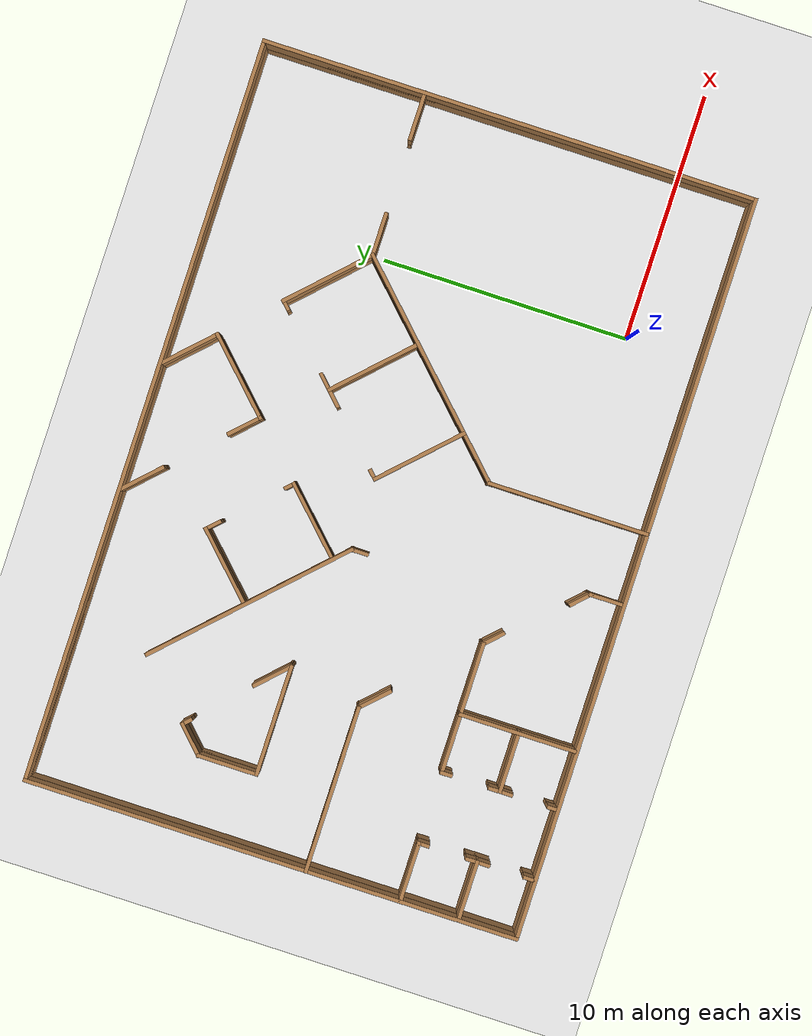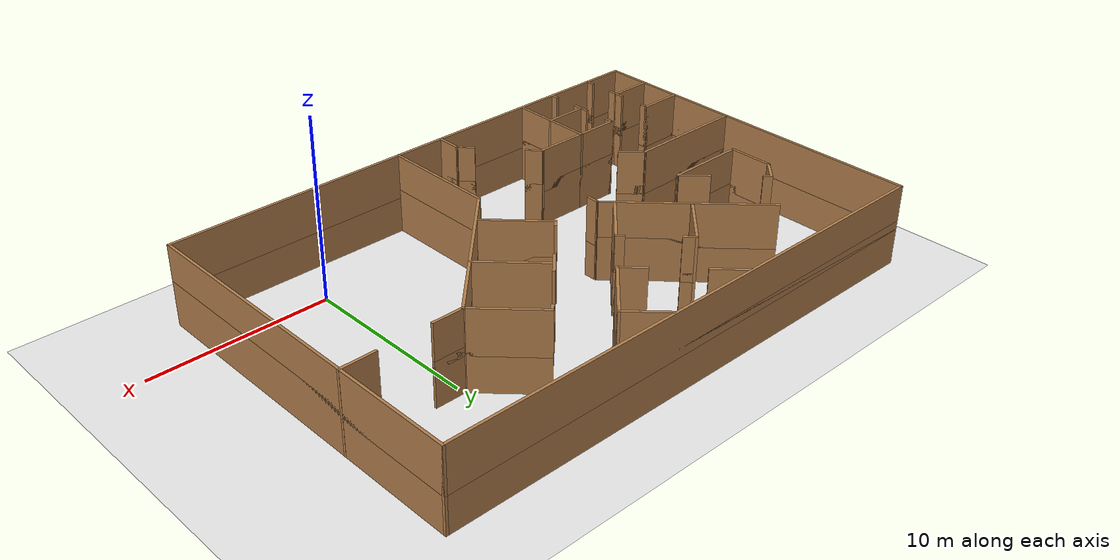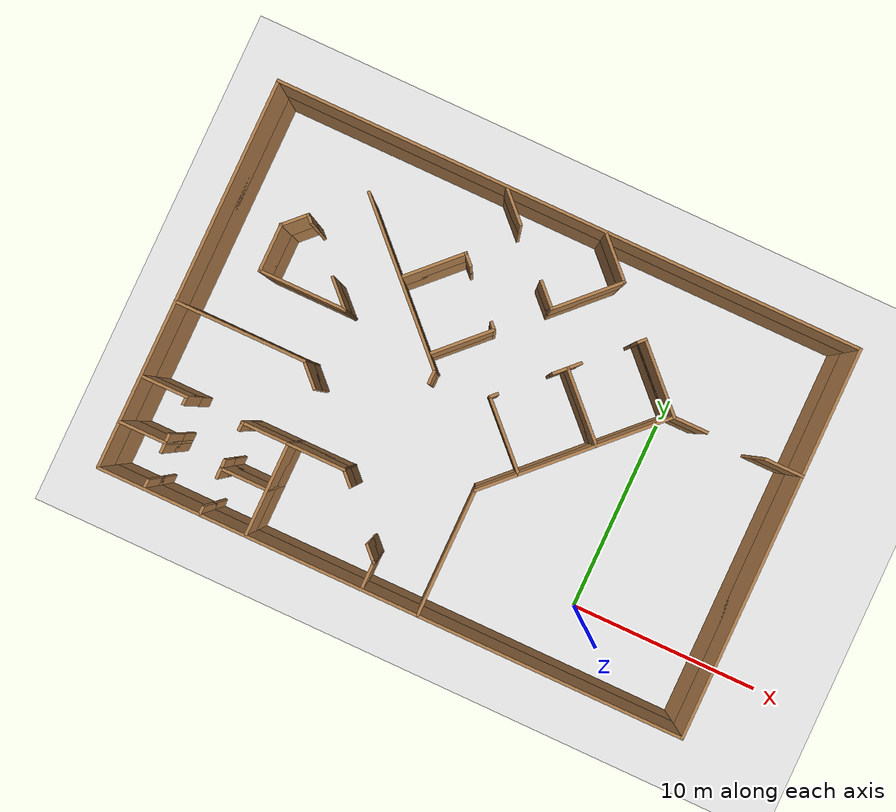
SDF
<sdf version="1.7">
 <world name="default">
  <model name="ground_plane">
   <static>1</static>
   <link name="link">
    <collision name="collision">
     <geometry><plane><normal>0 0 1</normal><size>100 100</size></plane></geometry>
     <surface>
      <contact><collide_bitmask>65535</collide_bitmask></contact>
      <friction><ode><mu>100</mu><mu2>50</mu2></ode></friction>
     </surface>
    </collision>
    <visual name="visual">
     <cast_shadows>0</cast_shadows>
     <geometry><plane><normal>0 0 1</normal><size>100 100</size></plane></geometry>
     <material>
      <script><uri>file://media/materials/scripts/gazebo.material</uri><name>Gazebo/White</name></script>
     </material>
    </visual>
   </link>
  </model>
  <model name="office_02_clone">
   <pose>-8.5 7 2 0 -0 0</pose>
   <link name="Wall_102">
    <collision name="Wall_102_Collision">
     <geometry><box><size>1.5 0.15 2.5</size></box></geometry>
     <pose>0 0 1.25 0 -0 0</pose>
    </collision>
    <visual name="Wall_102_Visual">
     <pose>0 0 1.25 0 -0 0</pose>
     <geometry><box><size>1.5 0.15 2.5</size></box></geometry>
     <material>
      <script><uri>file://media/materials/scripts/gazebo.material</uri><name>Gazebo/Wood</name></script>
      <ambient>1 1 1 1</ambient>
     </material>
    </visual>
    <pose>2.91922 3.4043 0 0 0 -2.35619</pose>
   </link>
   <link name="Wall_107">
    <collision name="Wall_107_Collision">
     <geometry><box><size>4 0.15 2.5</size></box></geometry>
     <pose>0 0 1.25 0 -0 0</pose>
    </collision>
    <visual name="Wall_107_Visual">
     <pose>0 0 1.25 0 -0 0</pose>
     <geometry><box><size>4 0.15 2.5</size></box></geometry>
     <material>
      <script><uri>file://media/materials/scripts/gazebo.material</uri><name>Gazebo/Wood</name></script>
      <ambient>1 1 1 1</ambient>
     </material>
    </visual>
    <pose>1.57572 -0.661562 0 0 0 -0.785398</pose>
   </link>
   <link name="Wall_109">
    <collision name="Wall_109_Collision">
     <geometry><box><size>3.75 0.15 2.5</size></box></geometry>
     <pose>0 0 1.25 0 -0 0</pose>
    </collision>
    <visual name="Wall_109_Visual">
     <pose>0 0 1.25 0 -0 0</pose>
     <geometry><box><size>3.75 0.15 2.5</size></box></geometry>
     <material>
      <script><uri>file://media/materials/scripts/gazebo.material</uri><name>Gazebo/Wood</name></script>
      <ambient>1 1 1 1</ambient>
     </material>
    </visual>
    <pose>2.37121 6.8868 0 0 0 -2.35619</pose>
   </link>
   <link name="Wall_110">
    <collision name="Wall_110_Collision">
     <geometry><box><size>1.5 0.15 2.5</size></box></geometry>
     <pose>0 0 1.25 0 -0 0</pose>
    </collision>
    <visual name="Wall_110_Visual">
     <pose>0 0 1.25 0 -0 0</pose>
     <geometry><box><size>1.5 0.15 2.5</size></box></geometry>
     <material>
      <script><uri>file://media/materials/scripts/gazebo.material</uri><name>Gazebo/Wood</name></script>
      <ambient>1 1 1 1</ambient>
     </material>
    </visual>
    <pose>0.621125 6.09131 0 0 -0 2.35619</pose>
   </link>
   <link name="Wall_112">
    <collision name="Wall_112_Collision">
     <geometry><box><size>2 0.15 2.5</size></box></geometry>
     <pose>0 0 1.25 0 -0 0</pose>
    </collision>
    <visual name="Wall_112_Visual">
     <pose>0 0 1.25 0 -0 0</pose>
     <geometry><box><size>2 0.15 2.5</size></box></geometry>
     <material>
      <script><uri>file://media/materials/scripts/gazebo.material</uri><name>Gazebo/Wood</name></script>
      <ambient>1 1 1 1</ambient>
     </material>
    </visual>
    <pose>-2.5255 9.23793 0 0 -0 2.35619</pose>
   </link>
   <link name="Wall_116">
    <collision name="Wall_116_Collision">
     <geometry><box><size>9 0.15 2.5</size></box></geometry>
     <pose>0 0 1.25 0 -0 0</pose>
    </collision>
    <visual name="Wall_116_Visual">
     <pose>0 0 1.25 0 -0 0</pose>
     <geometry><box><size>9 0.15 2.5</size></box></geometry>
     <material>
      <script><uri>file://media/materials/scripts/gazebo.material</uri><name>Gazebo/Wood</name></script>
      <ambient>1 1 1 1</ambient>
     </material>
    </visual>
    <pose>-5.76441 3.82857 0 0 -0 2.35619</pose>
   </link>
   <link name="Wall_121">
    <collision name="Wall_121_Collision">
     <geometry><box><size>0.75 0.15 2.5</size></box></geometry>
     <pose>0 0 1.25 0 -0 0</pose>
    </collision>
    <visual name="Wall_121_Visual">
     <pose>0 0 1.25 0 -0 0</pose>
     <geometry><box><size>0.75 0.15 2.5</size></box></geometry>
     <material>
      <script><uri>file://media/materials/scripts/gazebo.material</uri><name>Gazebo/Wood</name></script>
      <ambient>1 1 1 1</ambient>
     </material>
    </visual>
    <pose>-2.63546 0.399619 0 0 0 -1.5708</pose>
   </link>
   <link name="Wall_126">
    <collision name="Wall_126_Collision">
     <geometry><box><size>3.25 0.15 2.5</size></box></geometry>
     <pose>0 0 1.25 0 -0 0</pose>
    </collision>
    <visual name="Wall_126_Visual">
     <pose>0 0 1.25 0 -0 0</pose>
     <geometry><box><size>3.25 0.15 2.5</size></box></geometry>
     <material>
      <script><uri>file://media/materials/scripts/gazebo.material</uri><name>Gazebo/Wood</name></script>
      <ambient>1 1 1 1</ambient>
     </material>
    </visual>
    <pose>-2.01285 2.50274 0 0 0 -2.35619</pose>
   </link>
   <link name="Wall_131">
    <collision name="Wall_131_Collision">
     <geometry><box><size>0.5 0.15 2.5</size></box></geometry>
     <pose>0 0 1.25 0 -0 0</pose>
    </collision>
    <visual name="Wall_131_Visual">
     <pose>0 0 1.25 0 -0 0</pose>
     <geometry><box><size>0.5 0.15 2.5</size></box></geometry>
     <material>
      <script><uri>file://media/materials/scripts/gazebo.material</uri><name>Gazebo/Wood</name></script>
      <ambient>1 1 1 1</ambient>
     </material>
    </visual>
    <pose>-1.04058 3.7225 0 0 -0 2.35619</pose>
   </link>
   <link name="Wall_134">
    <collision name="Wall_134_Collision">
     <geometry><box><size>0.75 0.15 2.5</size></box></geometry>
     <pose>0 0 1.25 0 -0 0</pose>
    </collision>
    <visual name="Wall_134_Visual">
     <pose>0 0 1.25 0 -0 0</pose>
     <geometry><box><size>0.75 0.15 2.5</size></box></geometry>
     <material>
      <script><uri>file://media/materials/scripts/gazebo.material</uri><name>Gazebo/Wood</name></script>
      <ambient>1 1 1 1</ambient>
     </material>
    </visual>
    <pose>-3.39171 6.07363 0 0 -0 2.35619</pose>
   </link>
   <link name="Wall_135">
    <collision name="Wall_135_Collision">
     <geometry><box><size>3.25 0.15 2.5</size></box></geometry>
     <pose>0 0 1.25 0 -0 0</pose>
    </collision>
    <visual name="Wall_135_Visual">
     <pose>0 0 1.25 0 -0 0</pose>
     <geometry><box><size>3.25 0.15 2.5</size></box></geometry>
     <material>
      <script><uri>file://media/materials/scripts/gazebo.material</uri><name>Gazebo/Wood</name></script>
      <ambient>1 1 1 1</ambient>
     </material>
    </visual>
    <pose>-4.69985 5.18975 0 0 0 -2.35619</pose>
   </link>
   <link name="Wall_160">
    <collision name="Wall_160_Collision">
     <geometry><box><size>2.5 0.15 2.5</size></box></geometry>
     <pose>0 0 1.25 0 -0 0</pose>
    </collision>
    <visual name="Wall_160_Visual">
     <pose>0 0 1.25 0 -0 0</pose>
     <geometry><box><size>2.5 0.15 2.5</size></box></geometry>
     <material>
      <script><uri>file://media/materials/scripts/gazebo.material</uri><name>Gazebo/Wood</name></script>
      <ambient>1 1 1 1</ambient>
     </material>
    </visual>
    <pose>-13.7509 -7.575 0 0 -0 0</pose>
   </link>
   <link name="Wall_164">
    <collision name="Wall_164_Collision">
     <geometry><box><size>2.5 0.15 2.5</size></box></geometry>
     <pose>0 0 1.25 0 -0 0</pose>
    </collision>
    <visual name="Wall_164_Visual">
     <pose>0 0 1.25 0 -0 0</pose>
     <geometry><box><size>2.5 0.15 2.5</size></box></geometry>
     <material>
      <script><uri>file://media/materials/scripts/gazebo.material</uri><name>Gazebo/Wood</name></script>
      <ambient>1 1 1 1</ambient>
     </material>
    </visual>
    <pose>-13.7509 -5.225 0 0 -0 0</pose>
   </link>
   <link name="Wall_171">
    <collision name="Wall_171_Collision">
     <geometry><box><size>2.5 0.15 2.5</size></box></geometry>
     <pose>0 0 1.25 0 -0 0</pose>
    </collision>
    <visual name="Wall_171_Visual">
     <pose>0 0 1.25 0 -0 0</pose>
     <geometry><box><size>2.5 0.15 2.5</size></box></geometry>
     <material>
      <script><uri>file://media/materials/scripts/gazebo.material</uri><name>Gazebo/Wood</name></script>
      <ambient>1 1 1 1</ambient>
     </material>
    </visual>
    <pose>-8.55093 -7.575 0 0 -0 0</pose>
   </link>
   <link name="Wall_173">
    <collision name="Wall_173_Collision">
     <geometry><box><size>0.5 0.15 2.5</size></box></geometry>
     <pose>0 0 1.25 0 -0 0</pose>
    </collision>
    <visual name="Wall_173_Visual">
     <pose>0 0 1.25 0 -0 0</pose>
     <geometry><box><size>0.5 0.15 2.5</size></box></geometry>
     <material>
      <script><uri>file://media/materials/scripts/gazebo.material</uri><name>Gazebo/Wood</name></script>
      <ambient>1 1 1 1</ambient>
     </material>
    </visual>
    <pose>-12.5759 -5.4 0 0 0 -1.5708</pose>
   </link>
   <link name="Wall_175">
    <collision name="Wall_175_Collision">
     <geometry><box><size>0.5 0.15 2.5</size></box></geometry>
     <pose>0 0 1.25 0 -0 0</pose>
    </collision>
    <visual name="Wall_175_Visual">
     <pose>0 0 1.25 0 -0 0</pose>
     <geometry><box><size>0.5 0.15 2.5</size></box></geometry>
     <material>
      <script><uri>file://media/materials/scripts/gazebo.material</uri><name>Gazebo/Wood</name></script>
      <ambient>1 1 1 1</ambient>
     </material>
    </visual>
    <pose>-9.72593 -5.4 0 0 0 -1.5708</pose>
   </link>
   <link name="Wall_178">
    <collision name="Wall_178_Collision">
     <geometry><box><size>1 0.15 2.5</size></box></geometry>
     <pose>0 0 1.25 0 -0 0</pose>
    </collision>
    <visual name="Wall_178_Visual">
     <pose>0 0 1.25 0 -0 0</pose>
     <geometry><box><size>1 0.15 2.5</size></box></geometry>
     <material>
      <script><uri>file://media/materials/scripts/gazebo.material</uri><name>Gazebo/Wood</name></script>
      <ambient>1 1 1 1</ambient>
     </material>
    </visual>
    <pose>-12.5759 -7.6 0 0 0 -1.5708</pose>
   </link>
   <link name="Wall_183">
    <collision name="Wall_183_Collision">
     <geometry><box><size>0.5 0.15 2.5</size></box></geometry>
     <pose>0 0 1.25 0 -0 0</pose>
    </collision>
    <visual name="Wall_183_Visual">
     <pose>0 0 1.25 0 -0 0</pose>
     <geometry><box><size>0.5 0.15 2.5</size></box></geometry>
     <material>
      <script><uri>file://media/materials/scripts/gazebo.material</uri><name>Gazebo/Wood</name></script>
      <ambient>1 1 1 1</ambient>
     </material>
    </visual>
    <pose>-12.5759 -9.685 0 0 0 -1.5708</pose>
   </link>
   <link name="Wall_186">
    <collision name="Wall_186_Collision">
     <geometry><box><size>1 0.15 2.5</size></box></geometry>
     <pose>0 0 1.25 0 -0 0</pose>
    </collision>
    <visual name="Wall_186_Visual">
     <pose>0 0 1.25 0 -0 0</pose>
     <geometry><box><size>1 0.15 2.5</size></box></geometry>
     <material>
      <script><uri>file://media/materials/scripts/gazebo.material</uri><name>Gazebo/Wood</name></script>
      <ambient>1 1 1 1</ambient>
     </material>
    </visual>
    <pose>-9.72593 -7.6 0 0 0 -1.5708</pose>
   </link>
   <link name="Wall_188">
    <collision name="Wall_188_Collision">
     <geometry><box><size>0.5 0.15 2.5</size></box></geometry>
     <pose>0 0 1.25 0 -0 0</pose>
    </collision>
    <visual name="Wall_188_Visual">
     <pose>0 0 1.25 0 -0 0</pose>
     <geometry><box><size>0.5 0.15 2.5</size></box></geometry>
     <material>
      <script><uri>file://media/materials/scripts/gazebo.material</uri><name>Gazebo/Wood</name></script>
      <ambient>1 1 1 1</ambient>
     </material>
    </visual>
    <pose>-9.72593 -9.731 0 0 0 -1.5708</pose>
   </link>
   <link name="Wall_194">
    <collision name="Wall_194_Collision">
     <geometry><box><size>1.5 0.15 2.5</size></box></geometry>
     <pose>0 0 1.25 0 -0 0</pose>
    </collision>
    <visual name="Wall_194_Visual">
     <pose>0 0 1.25 0 -0 0</pose>
     <geometry><box><size>1.5 0.15 2.5</size></box></geometry>
     <material>
      <script><uri>file://media/materials/scripts/gazebo.material</uri><name>Gazebo/Wood</name></script>
      <ambient>1 1 1 1</ambient>
     </material>
    </visual>
    <pose>-7.85323 -1.8977 0 0 -0 2.35619</pose>
   </link>
   <link name="Wall_195">
    <collision name="Wall_195_Collision">
     <geometry><box><size>6.75 0.15 2.5</size></box></geometry>
     <pose>0 0 1.25 0 -0 0</pose>
    </collision>
    <visual name="Wall_195_Visual">
     <pose>0 0 1.25 0 -0 0</pose>
     <geometry><box><size>6.75 0.15 2.5</size></box></geometry>
     <material>
      <script><uri>file://media/materials/scripts/gazebo.material</uri><name>Gazebo/Wood</name></script>
      <ambient>1 1 1 1</ambient>
     </material>
    </visual>
    <pose>-11.6305 -1.42041 0 0 -0 3.14159</pose>
   </link>
   <link name="Wall_200">
    <collision name="Wall_200_Collision">
     <geometry><box><size>1.5 0.15 2.5</size></box></geometry>
     <pose>0 0 1.25 0 -0 0</pose>
    </collision>
    <visual name="Wall_200_Visual">
     <pose>0 0 1.25 0 -0 0</pose>
     <geometry><box><size>1.5 0.15 2.5</size></box></geometry>
     <material>
      <script><uri>file://media/materials/scripts/gazebo.material</uri><name>Gazebo/Wood</name></script>
      <ambient>1 1 1 1</ambient>
     </material>
    </visual>
    <pose>-1.45644 -9.23222 0 0 -0 1.5708</pose>
   </link>
   <link name="Wall_229">
    <collision name="Wall_229_Collision">
     <geometry><box><size>4.5 0.15 2.5</size></box></geometry>
     <pose>0 0 1.25 0 -0 0</pose>
    </collision>
    <visual name="Wall_229_Visual">
     <pose>0 0 1.25 0 -0 0</pose>
     <geometry><box><size>4.5 0.15 2.5</size></box></geometry>
     <material>
      <script><uri>file://media/materials/scripts/gazebo.material</uri><name>Gazebo/Wood</name></script>
      <ambient>1 1 1 1</ambient>
     </material>
    </visual>
    <pose>-9.79935 1.52745 0 0 -0 0</pose>
   </link>
   <link name="Wall_230">
    <collision name="Wall_230_Collision">
     <geometry><box><size>1.75 0.15 2.5</size></box></geometry>
     <pose>0 0 1.25 0 -0 0</pose>
    </collision>
    <visual name="Wall_230_Visual">
     <pose>0 0 1.25 0 -0 0</pose>
     <geometry><box><size>1.75 0.15 2.5</size></box></geometry>
     <material>
      <script><uri>file://media/materials/scripts/gazebo.material</uri><name>Gazebo/Wood</name></script>
      <ambient>1 1 1 1</ambient>
     </material>
    </visual>
    <pose>-8.19003 2.09313 0 0 -0 2.35619</pose>
   </link>
   <link name="Wall_244">
    <collision name="Wall_244_Collision">
     <geometry><box><size>2.5 0.15 2.5</size></box></geometry>
     <pose>0 0 1.25 0 -0 0</pose>
    </collision>
    <visual name="Wall_244_Visual">
     <pose>0 0 1.25 0 -0 0</pose>
     <geometry><box><size>2.5 0.15 2.5</size></box></geometry>
     <material>
      <script><uri>file://media/materials/scripts/gazebo.material</uri><name>Gazebo/Wood</name></script>
      <ambient>1 1 1 1</ambient>
     </material>
    </visual>
    <pose>-11.9743 2.70245 0 0 -0 1.5708</pose>
   </link>
   <link name="Wall_246">
    <collision name="Wall_246_Collision">
     <geometry><box><size>1.5 0.15 2.5</size></box></geometry>
     <pose>0 0 1.25 0 -0 0</pose>
    </collision>
    <visual name="Wall_246_Visual">
     <pose>0 0 1.25 0 -0 0</pose>
     <geometry><box><size>1.5 0.15 2.5</size></box></geometry>
     <material>
      <script><uri>file://media/materials/scripts/gazebo.material</uri><name>Gazebo/Wood</name></script>
      <ambient>1 1 1 1</ambient>
     </material>
    </visual>
    <pose>-11.4971 4.35474 0 0 -0 0.785398</pose>
   </link>
   <link name="Wall_247">
    <collision name="Wall_247_Collision">
     <geometry><box><size>0.5 0.15 2.5</size></box></geometry>
     <pose>0 0 1.25 0 -0 0</pose>
    </collision>
    <visual name="Wall_247_Visual">
     <pose>0 0 1.25 0 -0 0</pose>
     <geometry><box><size>0.5 0.15 2.5</size></box></geometry>
     <material>
      <script><uri>file://media/materials/scripts/gazebo.material</uri><name>Gazebo/Wood</name></script>
      <ambient>1 1 1 1</ambient>
     </material>
    </visual>
    <pose>-10.896 4.7083 0 0 0 -0.785398</pose>
   </link>
   <link name="Wall_253">
    <collision name="Wall_253_Collision">
     <geometry><box><size>2.5 0.15 2.5</size></box></geometry>
     <pose>0 0 1.25 0 -0 0</pose>
    </collision>
    <visual name="Wall_253_Visual">
     <pose>0 0 1.25 0 -0 0</pose>
     <geometry><box><size>2.5 0.15 2.5</size></box></geometry>
     <material>
      <script><uri>file://media/materials/scripts/gazebo.material</uri><name>Gazebo/Wood</name></script>
      <ambient>1 1 1 1</ambient>
     </material>
    </visual>
    <pose>-8.55093 -5.225 0 0 -0 0</pose>
   </link>
   <link name="Wall_254">
    <collision name="Wall_254_Collision">
     <geometry><box><size>4.75 0.15 2.5</size></box></geometry>
     <pose>0 0 1.25 0 -0 0</pose>
    </collision>
    <visual name="Wall_254_Visual">
     <pose>0 0 1.25 0 -0 0</pose>
     <geometry><box><size>4.75 0.15 2.5</size></box></geometry>
     <material>
      <script><uri>file://media/materials/scripts/gazebo.material</uri><name>Gazebo/Wood</name></script>
      <ambient>1 1 1 1</ambient>
     </material>
    </visual>
    <pose>-7.37593 -7.525 0 0 0 -1.5708</pose>
   </link>
   <link name="Wall_258">
    <collision name="Wall_258_Collision">
     <geometry><box><size>3 0.15 2.5</size></box></geometry>
     <pose>0 0 1.25 0 -0 0</pose>
    </collision>
    <visual name="Wall_258_Visual">
     <pose>0 0 1.25 0 -0 0</pose>
     <geometry><box><size>3 0.15 2.5</size></box></geometry>
     <material>
      <script><uri>file://media/materials/scripts/gazebo.material</uri><name>Gazebo/Wood</name></script>
      <ambient>1 1 1 1</ambient>
     </material>
    </visual>
    <pose>-5.95093 -5.225 0 0 -0 0</pose>
   </link>
   <link name="Wall_259">
    <collision name="Wall_259_Collision">
     <geometry><box><size>1 0.15 2.5</size></box></geometry>
     <pose>0 0 1.25 0 -0 0</pose>
    </collision>
    <visual name="Wall_259_Visual">
     <pose>0 0 1.25 0 -0 0</pose>
     <geometry><box><size>1 0.15 2.5</size></box></geometry>
     <material>
      <script><uri>file://media/materials/scripts/gazebo.material</uri><name>Gazebo/Wood</name></script>
      <ambient>1 1 1 1</ambient>
     </material>
    </visual>
    <pose>-4.22541 -5.52552 0 0 0 -0.785398</pose>
   </link>
   <link name="Wall_261">
    <collision name="Wall_261_Collision">
     <geometry><box><size>1 0.15 2.5</size></box></geometry>
     <pose>0 0 1.25 0 -0 0</pose>
    </collision>
    <visual name="Wall_261_Visual">
     <pose>0 0 1.25 0 -0 0</pose>
     <geometry><box><size>1 0.15 2.5</size></box></geometry>
     <material>
      <script><uri>file://media/materials/scripts/gazebo.material</uri><name>Gazebo/Wood</name></script>
      <ambient>1 1 1 1</ambient>
     </material>
    </visual>
    <pose>-1.75697 -8.2567 0 0 -0 2.35619</pose>
   </link>
   <link name="Wall_5">
    <collision name="Wall_5_Collision">
     <geometry><box><size>20 0.15 2.5</size></box></geometry>
     <pose>0 0 1.25 0 -0 0</pose>
    </collision>
    <visual name="Wall_5_Visual">
     <pose>0 0 1.25 0 -0 0</pose>
     <geometry><box><size>20 0.15 2.5</size></box></geometry>
     <material>
      <script><uri>file://media/materials/scripts/gazebo.material</uri><name>Gazebo/Wood</name></script>
      <ambient>1 1 1 1</ambient>
     </material>
    </visual>
    <pose>-14.9259 0 0 0 0 -1.5708</pose>
   </link>
   <link name="Wall_51">
    <collision name="Wall_51_Collision">
     <geometry><box><size>6.5 0.15 2.5</size></box></geometry>
     <pose>0 0 1.25 0 -0 0</pose>
    </collision>
    <visual name="Wall_51_Visual">
     <pose>0 0 1.25 0 -0 0</pose>
     <geometry><box><size>6.5 0.15 2.5</size></box></geometry>
     <material>
      <script><uri>file://media/materials/scripts/gazebo.material</uri><name>Gazebo/Wood</name></script>
      <ambient>1 1 1 1</ambient>
     </material>
    </visual>
    <pose>1.41662 -6.71802 0 0 -0 1.5708</pose>
   </link>
   <link name="Wall_55">
    <collision name="Wall_55_Collision">
     <geometry><box><size>10 0.15 2.5</size></box></geometry>
     <pose>0 0 1.25 0 -0 0</pose>
    </collision>
    <visual name="Wall_55_Visual">
     <pose>0 0 1.25 0 -0 0</pose>
     <geometry><box><size>10 0.15 2.5</size></box></geometry>
     <material>
      <script><uri>file://media/materials/scripts/gazebo.material</uri><name>Gazebo/Wood</name></script>
      <ambient>1 1 1 1</ambient>
     </material>
    </visual>
    <pose>4.89912 -0.060521 0 0 0 -2.35619</pose>
   </link>
   <link name="Wall_57">
    <collision name="Wall_57_Collision">
     <geometry><box><size>1.8029 0.15 2.5</size></box></geometry>
     <pose>0 0 1.25 0 -0 0</pose>
    </collision>
    <visual name="Wall_57_Visual">
     <pose>0 0 1.25 0 -0 0</pose>
     <geometry><box><size>1.8029 0.15 2.5</size></box></geometry>
     <material>
      <script><uri>file://media/materials/scripts/gazebo.material</uri><name>Gazebo/Wood</name></script>
      <ambient>1 1 1 1</ambient>
     </material>
    </visual>
    <pose>9.20807 3.42198 0 0 -0 0</pose>
   </link>
   <link name="Wall_59">
    <collision name="Wall_59_Collision">
     <geometry><box><size>2 0.15 2.5</size></box></geometry>
     <pose>0 0 1.25 0 -0 0</pose>
    </collision>
    <visual name="Wall_59_Visual">
     <pose>0 0 1.25 0 -0 0</pose>
     <geometry><box><size>2 0.15 2.5</size></box></geometry>
     <material>
      <script><uri>file://media/materials/scripts/gazebo.material</uri><name>Gazebo/Wood</name></script>
      <ambient>1 1 1 1</ambient>
     </material>
    </visual>
    <pose>14.0055 3.43241 0 0 -0 3.14159</pose>
   </link>
   <link name="Wall_6">
    <collision name="Wall_6_Collision">
     <geometry><box><size>30 0.15 2.5</size></box></geometry>
     <pose>0 0 1.25 0 -0 0</pose>
    </collision>
    <visual name="Wall_6_Visual">
     <pose>0 0 1.25 0 -0 0</pose>
     <geometry><box><size>30 0.15 2.5</size></box></geometry>
     <material>
      <script><uri>file://media/materials/scripts/gazebo.material</uri><name>Gazebo/Wood</name></script>
      <ambient>1 1 1 1</ambient>
     </material>
    </visual>
    <pose>-0.000934 -9.925 0 0 -0 0</pose>
   </link>
   <link name="Wall_7">
    <collision name="Wall_7_Collision">
     <geometry><box><size>20 0.15 2.5</size></box></geometry>
     <pose>0 0 1.25 0 -0 0</pose>
    </collision>
    <visual name="Wall_7_Visual">
     <pose>0 0 1.25 0 -0 0</pose>
     <geometry><box><size>20 0.15 2.5</size></box></geometry>
     <material>
      <script><uri>file://media/materials/scripts/gazebo.material</uri><name>Gazebo/Wood</name></script>
      <ambient>1 1 1 1</ambient>
     </material>
    </visual>
    <pose>14.9241 0 0 0 -0 1.5708</pose>
   </link>
   <link name="Wall_8">
    <collision name="Wall_8_Collision">
     <geometry><box><size>30 0.15 2.5</size></box></geometry>
     <pose>0 0 1.25 0 -0 0</pose>
    </collision>
    <visual name="Wall_8_Visual">
     <pose>0 0 1.25 0 -0 0</pose>
     <geometry><box><size>30 0.15 2.5</size></box></geometry>
     <material>
      <script><uri>file://media/materials/scripts/gazebo.material</uri><name>Gazebo/Wood</name></script>
      <ambient>1 1 1 1</ambient>
     </material>
    </visual>
    <pose>-0.000934 9.925 0 0 -0 3.14159</pose>
   </link>
   <link name="Wall_80">
    <collision name="Wall_80_Collision">
     <geometry><box><size>4 0.15 2.5</size></box></geometry>
     <pose>0 0 1.25 0 -0 0</pose>
    </collision>
    <visual name="Wall_80_Visual">
     <pose>0 0 1.25 0 -0 0</pose>
     <geometry><box><size>4 0.15 2.5</size></box></geometry>
     <material>
      <script><uri>file://media/materials/scripts/gazebo.material</uri><name>Gazebo/Wood</name></script>
      <ambient>1 1 1 1</ambient>
     </material>
    </visual>
    <pose>7.02044 4.78316 0 0 -0 2.35619</pose>
   </link>
   <link name="Wall_82">
    <collision name="Wall_82_Collision">
     <geometry><box><size>2.5 0.15 2.5</size></box></geometry>
     <pose>0 0 1.25 0 -0 0</pose>
    </collision>
    <visual name="Wall_82_Visual">
     <pose>0 0 1.25 0 -0 0</pose>
     <geometry><box><size>2.5 0.15 2.5</size></box></geometry>
     <material>
      <script><uri>file://media/materials/scripts/gazebo.material</uri><name>Gazebo/Wood</name></script>
      <ambient>1 1 1 1</ambient>
     </material>
    </visual>
    <pose>2.81316 8.99044 0 0 -0 2.35619</pose>
   </link>
   <link name="Wall_87">
    <collision name="Wall_87_Collision">
     <geometry><box><size>4 0.15 2.5</size></box></geometry>
     <pose>0 0 1.25 0 -0 0</pose>
    </collision>
    <visual name="Wall_87_Visual">
     <pose>0 0 1.25 0 -0 0</pose>
     <geometry><box><size>4 0.15 2.5</size></box></geometry>
     <material>
      <script><uri>file://media/materials/scripts/gazebo.material</uri><name>Gazebo/Wood</name></script>
      <ambient>1 1 1 1</ambient>
     </material>
    </visual>
    <pose>4.29808 2.0608 0 0 -0 2.35619</pose>
   </link>
   <link name="Wall_90">
    <collision name="Wall_90_Collision">
     <geometry><box><size>0.5 0.15 2.5</size></box></geometry>
     <pose>0 0 1.25 0 -0 0</pose>
    </collision>
    <visual name="Wall_90_Visual">
     <pose>0 0 1.25 0 -0 0</pose>
     <geometry><box><size>0.5 0.15 2.5</size></box></geometry>
     <material>
      <script><uri>file://media/materials/scripts/gazebo.material</uri><name>Gazebo/Wood</name></script>
      <ambient>1 1 1 1</ambient>
     </material>
    </visual>
    <pose>5.53552 6.0206 0 0 0 -2.35619</pose>
   </link>
   <link name="Wall_94">
    <collision name="Wall_94_Collision">
     <geometry><box><size>0.5 0.15 2.5</size></box></geometry>
     <pose>0 0 1.25 0 -0 0</pose>
    </collision>
    <visual name="Wall_94_Visual">
     <pose>0 0 1.25 0 -0 0</pose>
     <geometry><box><size>0.5 0.15 2.5</size></box></geometry>
     <material>
      <script><uri>file://media/materials/scripts/gazebo.material</uri><name>Gazebo/Wood</name></script>
      <ambient>1 1 1 1</ambient>
     </material>
    </visual>
    <pose>0.338283 0.823362 0 0 -0 0.785398</pose>
   </link>
   <static>1</static>
  </model>
  <model name="office_02_clone_clone">
   <pose>-8.5 7 0 0 -0 0</pose>
   <link name="Wall_102">
    <collision name="Wall_102_Collision">
     <geometry><box><size>1.5 0.15 2.5</size></box></geometry>
     <pose>0 0 1.25 0 -0 0</pose>
    </collision>
    <visual name="Wall_102_Visual">
     <pose>0 0 1.25 0 -0 0</pose>
     <geometry><box><size>1.5 0.15 2.5</size></box></geometry>
     <material>
      <script><uri>file://media/materials/scripts/gazebo.material</uri><name>Gazebo/Wood</name></script>
      <ambient>1 1 1 1</ambient>
     </material>
    </visual>
    <pose>2.91922 3.4043 0 0 0 -2.35619</pose>
   </link>
   <link name="Wall_107">
    <collision name="Wall_107_Collision">
     <geometry><box><size>4 0.15 2.5</size></box></geometry>
     <pose>0 0 1.25 0 -0 0</pose>
    </collision>
    <visual name="Wall_107_Visual">
     <pose>0 0 1.25 0 -0 0</pose>
     <geometry><box><size>4 0.15 2.5</size></box></geometry>
     <material>
      <script><uri>file://media/materials/scripts/gazebo.material</uri><name>Gazebo/Wood</name></script>
      <ambient>1 1 1 1</ambient>
     </material>
    </visual>
    <pose>1.57572 -0.661562 0 0 0 -0.785398</pose>
   </link>
   <link name="Wall_109">
    <collision name="Wall_109_Collision">
     <geometry><box><size>3.75 0.15 2.5</size></box></geometry>
     <pose>0 0 1.25 0 -0 0</pose>
    </collision>
    <visual name="Wall_109_Visual">
     <pose>0 0 1.25 0 -0 0</pose>
     <geometry><box><size>3.75 0.15 2.5</size></box></geometry>
     <material>
      <script><uri>file://media/materials/scripts/gazebo.material</uri><name>Gazebo/Wood</name></script>
      <ambient>1 1 1 1</ambient>
     </material>
    </visual>
    <pose>2.37121 6.8868 0 0 0 -2.35619</pose>
   </link>
   <link name="Wall_110">
    <collision name="Wall_110_Collision">
     <geometry><box><size>1.5 0.15 2.5</size></box></geometry>
     <pose>0 0 1.25 0 -0 0</pose>
    </collision>
    <visual name="Wall_110_Visual">
     <pose>0 0 1.25 0 -0 0</pose>
     <geometry><box><size>1.5 0.15 2.5</size></box></geometry>
     <material>
      <script><uri>file://media/materials/scripts/gazebo.material</uri><name>Gazebo/Wood</name></script>
      <ambient>1 1 1 1</ambient>
     </material>
    </visual>
    <pose>0.621125 6.09131 0 0 -0 2.35619</pose>
   </link>
   <link name="Wall_112">
    <collision name="Wall_112_Collision">
     <geometry><box><size>2 0.15 2.5</size></box></geometry>
     <pose>0 0 1.25 0 -0 0</pose>
    </collision>
    <visual name="Wall_112_Visual">
     <pose>0 0 1.25 0 -0 0</pose>
     <geometry><box><size>2 0.15 2.5</size></box></geometry>
     <material>
      <script><uri>file://media/materials/scripts/gazebo.material</uri><name>Gazebo/Wood</name></script>
      <ambient>1 1 1 1</ambient>
     </material>
    </visual>
    <pose>-2.5255 9.23793 0 0 -0 2.35619</pose>
   </link>
   <link name="Wall_116">
    <collision name="Wall_116_Collision">
     <geometry><box><size>9 0.15 2.5</size></box></geometry>
     <pose>0 0 1.25 0 -0 0</pose>
    </collision>
    <visual name="Wall_116_Visual">
     <pose>0 0 1.25 0 -0 0</pose>
     <geometry><box><size>9 0.15 2.5</size></box></geometry>
     <material>
      <script><uri>file://media/materials/scripts/gazebo.material</uri><name>Gazebo/Wood</name></script>
      <ambient>1 1 1 1</ambient>
     </material>
    </visual>
    <pose>-5.76441 3.82857 0 0 -0 2.35619</pose>
   </link>
   <link name="Wall_121">
    <collision name="Wall_121_Collision">
     <geometry><box><size>0.75 0.15 2.5</size></box></geometry>
     <pose>0 0 1.25 0 -0 0</pose>
    </collision>
    <visual name="Wall_121_Visual">
     <pose>0 0 1.25 0 -0 0</pose>
     <geometry><box><size>0.75 0.15 2.5</size></box></geometry>
     <material>
      <script><uri>file://media/materials/scripts/gazebo.material</uri><name>Gazebo/Wood</name></script>
      <ambient>1 1 1 1</ambient>
     </material>
    </visual>
    <pose>-2.63546 0.399619 0 0 0 -1.5708</pose>
   </link>
   <link name="Wall_126">
    <collision name="Wall_126_Collision">
     <geometry><box><size>3.25 0.15 2.5</size></box></geometry>
     <pose>0 0 1.25 0 -0 0</pose>
    </collision>
    <visual name="Wall_126_Visual">
     <pose>0 0 1.25 0 -0 0</pose>
     <geometry><box><size>3.25 0.15 2.5</size></box></geometry>
     <material>
      <script><uri>file://media/materials/scripts/gazebo.material</uri><name>Gazebo/Wood</name></script>
      <ambient>1 1 1 1</ambient>
     </material>
    </visual>
    <pose>-2.01285 2.50274 0 0 0 -2.35619</pose>
   </link>
   <link name="Wall_131">
    <collision name="Wall_131_Collision">
     <geometry><box><size>0.5 0.15 2.5</size></box></geometry>
     <pose>0 0 1.25 0 -0 0</pose>
    </collision>
    <visual name="Wall_131_Visual">
     <pose>0 0 1.25 0 -0 0</pose>
     <geometry><box><size>0.5 0.15 2.5</size></box></geometry>
     <material>
      <script><uri>file://media/materials/scripts/gazebo.material</uri><name>Gazebo/Wood</name></script>
      <ambient>1 1 1 1</ambient>
     </material>
    </visual>
    <pose>-1.04058 3.7225 0 0 -0 2.35619</pose>
   </link>
   <link name="Wall_134">
    <collision name="Wall_134_Collision">
     <geometry><box><size>0.75 0.15 2.5</size></box></geometry>
     <pose>0 0 1.25 0 -0 0</pose>
    </collision>
    <visual name="Wall_134_Visual">
     <pose>0 0 1.25 0 -0 0</pose>
     <geometry><box><size>0.75 0.15 2.5</size></box></geometry>
     <material>
      <script><uri>file://media/materials/scripts/gazebo.material</uri><name>Gazebo/Wood</name></script>
      <ambient>1 1 1 1</ambient>
     </material>
    </visual>
    <pose>-3.39171 6.07363 0 0 -0 2.35619</pose>
   </link>
   <link name="Wall_135">
    <collision name="Wall_135_Collision">
     <geometry><box><size>3.25 0.15 2.5</size></box></geometry>
     <pose>0 0 1.25 0 -0 0</pose>
    </collision>
    <visual name="Wall_135_Visual">
     <pose>0 0 1.25 0 -0 0</pose>
     <geometry><box><size>3.25 0.15 2.5</size></box></geometry>
     <material>
      <script><uri>file://media/materials/scripts/gazebo.material</uri><name>Gazebo/Wood</name></script>
      <ambient>1 1 1 1</ambient>
     </material>
    </visual>
    <pose>-4.69985 5.18975 0 0 0 -2.35619</pose>
   </link>
   <link name="Wall_160">
    <collision name="Wall_160_Collision">
     <geometry><box><size>2.5 0.15 2.5</size></box></geometry>
     <pose>0 0 1.25 0 -0 0</pose>
    </collision>
    <visual name="Wall_160_Visual">
     <pose>0 0 1.25 0 -0 0</pose>
     <geometry><box><size>2.5 0.15 2.5</size></box></geometry>
     <material>
      <script><uri>file://media/materials/scripts/gazebo.material</uri><name>Gazebo/Wood</name></script>
      <ambient>1 1 1 1</ambient>
     </material>
    </visual>
    <pose>-13.7509 -7.575 0 0 -0 0</pose>
   </link>
   <link name="Wall_164">
    <collision name="Wall_164_Collision">
     <geometry><box><size>2.5 0.15 2.5</size></box></geometry>
     <pose>0 0 1.25 0 -0 0</pose>
    </collision>
    <visual name="Wall_164_Visual">
     <pose>0 0 1.25 0 -0 0</pose>
     <geometry><box><size>2.5 0.15 2.5</size></box></geometry>
     <material>
      <script><uri>file://media/materials/scripts/gazebo.material</uri><name>Gazebo/Wood</name></script>
      <ambient>1 1 1 1</ambient>
     </material>
    </visual>
    <pose>-13.7509 -5.225 0 0 -0 0</pose>
   </link>
   <link name="Wall_171">
    <collision name="Wall_171_Collision">
     <geometry><box><size>2.5 0.15 2.5</size></box></geometry>
     <pose>0 0 1.25 0 -0 0</pose>
    </collision>
    <visual name="Wall_171_Visual">
     <pose>0 0 1.25 0 -0 0</pose>
     <geometry><box><size>2.5 0.15 2.5</size></box></geometry>
     <material>
      <script><uri>file://media/materials/scripts/gazebo.material</uri><name>Gazebo/Wood</name></script>
      <ambient>1 1 1 1</ambient>
     </material>
    </visual>
    <pose>-8.55093 -7.575 0 0 -0 0</pose>
   </link>
   <link name="Wall_173">
    <collision name="Wall_173_Collision">
     <geometry><box><size>0.5 0.15 2.5</size></box></geometry>
     <pose>0 0 1.25 0 -0 0</pose>
    </collision>
    <visual name="Wall_173_Visual">
     <pose>0 0 1.25 0 -0 0</pose>
     <geometry><box><size>0.5 0.15 2.5</size></box></geometry>
     <material>
      <script><uri>file://media/materials/scripts/gazebo.material</uri><name>Gazebo/Wood</name></script>
      <ambient>1 1 1 1</ambient>
     </material>
    </visual>
    <pose>-12.5759 -5.4 0 0 0 -1.5708</pose>
   </link>
   <link name="Wall_175">
    <collision name="Wall_175_Collision">
     <geometry><box><size>0.5 0.15 2.5</size></box></geometry>
     <pose>0 0 1.25 0 -0 0</pose>
    </collision>
    <visual name="Wall_175_Visual">
     <pose>0 0 1.25 0 -0 0</pose>
     <geometry><box><size>0.5 0.15 2.5</size></box></geometry>
     <material>
      <script><uri>file://media/materials/scripts/gazebo.material</uri><name>Gazebo/Wood</name></script>
      <ambient>1 1 1 1</ambient>
     </material>
    </visual>
    <pose>-9.72593 -5.4 0 0 0 -1.5708</pose>
   </link>
   <link name="Wall_178">
    <collision name="Wall_178_Collision">
     <geometry><box><size>1 0.15 2.5</size></box></geometry>
     <pose>0 0 1.25 0 -0 0</pose>
    </collision>
    <visual name="Wall_178_Visual">
     <pose>0 0 1.25 0 -0 0</pose>
     <geometry><box><size>1 0.15 2.5</size></box></geometry>
     <material>
      <script><uri>file://media/materials/scripts/gazebo.material</uri><name>Gazebo/Wood</name></script>
      <ambient>1 1 1 1</ambient>
     </material>
    </visual>
    <pose>-12.5759 -7.6 0 0 0 -1.5708</pose>
   </link>
   <link name="Wall_183">
    <collision name="Wall_183_Collision">
     <geometry><box><size>0.5 0.15 2.5</size></box></geometry>
     <pose>0 0 1.25 0 -0 0</pose>
    </collision>
    <visual name="Wall_183_Visual">
     <pose>0 0 1.25 0 -0 0</pose>
     <geometry><box><size>0.5 0.15 2.5</size></box></geometry>
     <material>
      <script><uri>file://media/materials/scripts/gazebo.material</uri><name>Gazebo/Wood</name></script>
      <ambient>1 1 1 1</ambient>
     </material>
    </visual>
    <pose>-12.5759 -9.685 0 0 0 -1.5708</pose>
   </link>
   <link name="Wall_186">
    <collision name="Wall_186_Collision">
     <geometry><box><size>1 0.15 2.5</size></box></geometry>
     <pose>0 0 1.25 0 -0 0</pose>
    </collision>
    <visual name="Wall_186_Visual">
     <pose>0 0 1.25 0 -0 0</pose>
     <geometry><box><size>1 0.15 2.5</size></box></geometry>
     <material>
      <script><uri>file://media/materials/scripts/gazebo.material</uri><name>Gazebo/Wood</name></script>
      <ambient>1 1 1 1</ambient>
     </material>
    </visual>
    <pose>-9.72593 -7.6 0 0 0 -1.5708</pose>
   </link>
   <link name="Wall_188">
    <collision name="Wall_188_Collision">
     <geometry><box><size>0.5 0.15 2.5</size></box></geometry>
     <pose>0 0 1.25 0 -0 0</pose>
    </collision>
    <visual name="Wall_188_Visual">
     <pose>0 0 1.25 0 -0 0</pose>
     <geometry><box><size>0.5 0.15 2.5</size></box></geometry>
     <material>
      <script><uri>file://media/materials/scripts/gazebo.material</uri><name>Gazebo/Wood</name></script>
      <ambient>1 1 1 1</ambient>
     </material>
    </visual>
    <pose>-9.72593 -9.731 0 0 0 -1.5708</pose>
   </link>
   <link name="Wall_194">
    <collision name="Wall_194_Collision">
     <geometry><box><size>1.5 0.15 2.5</size></box></geometry>
     <pose>0 0 1.25 0 -0 0</pose>
    </collision>
    <visual name="Wall_194_Visual">
     <pose>0 0 1.25 0 -0 0</pose>
     <geometry><box><size>1.5 0.15 2.5</size></box></geometry>
     <material>
      <script><uri>file://media/materials/scripts/gazebo.material</uri><name>Gazebo/Wood</name></script>
      <ambient>1 1 1 1</ambient>
     </material>
    </visual>
    <pose>-7.85323 -1.8977 0 0 -0 2.35619</pose>
   </link>
   <link name="Wall_195">
    <collision name="Wall_195_Collision">
     <geometry><box><size>6.75 0.15 2.5</size></box></geometry>
     <pose>0 0 1.25 0 -0 0</pose>
    </collision>
    <visual name="Wall_195_Visual">
     <pose>0 0 1.25 0 -0 0</pose>
     <geometry><box><size>6.75 0.15 2.5</size></box></geometry>
     <material>
      <script><uri>file://media/materials/scripts/gazebo.material</uri><name>Gazebo/Wood</name></script>
      <ambient>1 1 1 1</ambient>
     </material>
    </visual>
    <pose>-11.6305 -1.42041 0 0 -0 3.14159</pose>
   </link>
   <link name="Wall_200">
    <collision name="Wall_200_Collision">
     <geometry><box><size>1.5 0.15 2.5</size></box></geometry>
     <pose>0 0 1.25 0 -0 0</pose>
    </collision>
    <visual name="Wall_200_Visual">
     <pose>0 0 1.25 0 -0 0</pose>
     <geometry><box><size>1.5 0.15 2.5</size></box></geometry>
     <material>
      <script><uri>file://media/materials/scripts/gazebo.material</uri><name>Gazebo/Wood</name></script>
      <ambient>1 1 1 1</ambient>
     </material>
    </visual>
    <pose>-1.45644 -9.23222 0 0 -0 1.5708</pose>
   </link>
   <link name="Wall_229">
    <collision name="Wall_229_Collision">
     <geometry><box><size>4.5 0.15 2.5</size></box></geometry>
     <pose>0 0 1.25 0 -0 0</pose>
    </collision>
    <visual name="Wall_229_Visual">
     <pose>0 0 1.25 0 -0 0</pose>
     <geometry><box><size>4.5 0.15 2.5</size></box></geometry>
     <material>
      <script><uri>file://media/materials/scripts/gazebo.material</uri><name>Gazebo/Wood</name></script>
      <ambient>1 1 1 1</ambient>
     </material>
    </visual>
    <pose>-9.79935 1.52745 0 0 -0 0</pose>
   </link>
   <link name="Wall_230">
    <collision name="Wall_230_Collision">
     <geometry><box><size>1.75 0.15 2.5</size></box></geometry>
     <pose>0 0 1.25 0 -0 0</pose>
    </collision>
    <visual name="Wall_230_Visual">
     <pose>0 0 1.25 0 -0 0</pose>
     <geometry><box><size>1.75 0.15 2.5</size></box></geometry>
     <material>
      <script><uri>file://media/materials/scripts/gazebo.material</uri><name>Gazebo/Wood</name></script>
      <ambient>1 1 1 1</ambient>
     </material>
    </visual>
    <pose>-8.19003 2.09313 0 0 -0 2.35619</pose>
   </link>
   <link name="Wall_244">
    <collision name="Wall_244_Collision">
     <geometry><box><size>2.5 0.15 2.5</size></box></geometry>
     <pose>0 0 1.25 0 -0 0</pose>
    </collision>
    <visual name="Wall_244_Visual">
     <pose>0 0 1.25 0 -0 0</pose>
     <geometry><box><size>2.5 0.15 2.5</size></box></geometry>
     <material>
      <script><uri>file://media/materials/scripts/gazebo.material</uri><name>Gazebo/Wood</name></script>
      <ambient>1 1 1 1</ambient>
     </material>
    </visual>
    <pose>-11.9743 2.70245 0 0 -0 1.5708</pose>
   </link>
   <link name="Wall_246">
    <collision name="Wall_246_Collision">
     <geometry><box><size>1.5 0.15 2.5</size></box></geometry>
     <pose>0 0 1.25 0 -0 0</pose>
    </collision>
    <visual name="Wall_246_Visual">
     <pose>0 0 1.25 0 -0 0</pose>
     <geometry><box><size>1.5 0.15 2.5</size></box></geometry>
     <material>
      <script><uri>file://media/materials/scripts/gazebo.material</uri><name>Gazebo/Wood</name></script>
      <ambient>1 1 1 1</ambient>
     </material>
    </visual>
    <pose>-11.4971 4.35474 0 0 -0 0.785398</pose>
   </link>
   <link name="Wall_247">
    <collision name="Wall_247_Collision">
     <geometry><box><size>0.5 0.15 2.5</size></box></geometry>
     <pose>0 0 1.25 0 -0 0</pose>
    </collision>
    <visual name="Wall_247_Visual">
     <pose>0 0 1.25 0 -0 0</pose>
     <geometry><box><size>0.5 0.15 2.5</size></box></geometry>
     <material>
      <script><uri>file://media/materials/scripts/gazebo.material</uri><name>Gazebo/Wood</name></script>
      <ambient>1 1 1 1</ambient>
     </material>
    </visual>
    <pose>-10.896 4.7083 0 0 0 -0.785398</pose>
   </link>
   <link name="Wall_253">
    <collision name="Wall_253_Collision">
     <geometry><box><size>2.5 0.15 2.5</size></box></geometry>
     <pose>0 0 1.25 0 -0 0</pose>
    </collision>
    <visual name="Wall_253_Visual">
     <pose>0 0 1.25 0 -0 0</pose>
     <geometry><box><size>2.5 0.15 2.5</size></box></geometry>
     <material>
      <script><uri>file://media/materials/scripts/gazebo.material</uri><name>Gazebo/Wood</name></script>
      <ambient>1 1 1 1</ambient>
     </material>
    </visual>
    <pose>-8.55093 -5.225 0 0 -0 0</pose>
   </link>
   <link name="Wall_254">
    <collision name="Wall_254_Collision">
     <geometry><box><size>4.75 0.15 2.5</size></box></geometry>
     <pose>0 0 1.25 0 -0 0</pose>
    </collision>
    <visual name="Wall_254_Visual">
     <pose>0 0 1.25 0 -0 0</pose>
     <geometry><box><size>4.75 0.15 2.5</size></box></geometry>
     <material>
      <script><uri>file://media/materials/scripts/gazebo.material</uri><name>Gazebo/Wood</name></script>
      <ambient>1 1 1 1</ambient>
     </material>
    </visual>
    <pose>-7.37593 -7.525 0 0 0 -1.5708</pose>
   </link>
   <link name="Wall_258">
    <collision name="Wall_258_Collision">
     <geometry><box><size>3 0.15 2.5</size></box></geometry>
     <pose>0 0 1.25 0 -0 0</pose>
    </collision>
    <visual name="Wall_258_Visual">
     <pose>0 0 1.25 0 -0 0</pose>
     <geometry><box><size>3 0.15 2.5</size></box></geometry>
     <material>
      <script><uri>file://media/materials/scripts/gazebo.material</uri><name>Gazebo/Wood</name></script>
      <ambient>1 1 1 1</ambient>
     </material>
    </visual>
    <pose>-5.95093 -5.225 0 0 -0 0</pose>
   </link>
   <link name="Wall_259">
    <collision name="Wall_259_Collision">
     <geometry><box><size>1 0.15 2.5</size></box></geometry>
     <pose>0 0 1.25 0 -0 0</pose>
    </collision>
    <visual name="Wall_259_Visual">
     <pose>0 0 1.25 0 -0 0</pose>
     <geometry><box><size>1 0.15 2.5</size></box></geometry>
     <material>
      <script><uri>file://media/materials/scripts/gazebo.material</uri><name>Gazebo/Wood</name></script>
      <ambient>1 1 1 1</ambient>
     </material>
    </visual>
    <pose>-4.22541 -5.52552 0 0 0 -0.785398</pose>
   </link>
   <link name="Wall_261">
    <collision name="Wall_261_Collision">
     <geometry><box><size>1 0.15 2.5</size></box></geometry>
     <pose>0 0 1.25 0 -0 0</pose>
    </collision>
    <visual name="Wall_261_Visual">
     <pose>0 0 1.25 0 -0 0</pose>
     <geometry><box><size>1 0.15 2.5</size></box></geometry>
     <material>
      <script><uri>file://media/materials/scripts/gazebo.material</uri><name>Gazebo/Wood</name></script>
      <ambient>1 1 1 1</ambient>
     </material>
    </visual>
    <pose>-1.75697 -8.2567 0 0 -0 2.35619</pose>
   </link>
   <link name="Wall_5">
    <collision name="Wall_5_Collision">
     <geometry><box><size>20 0.15 2.5</size></box></geometry>
     <pose>0 0 1.25 0 -0 0</pose>
    </collision>
    <visual name="Wall_5_Visual">
     <pose>0 0 1.25 0 -0 0</pose>
     <geometry><box><size>20 0.15 2.5</size></box></geometry>
     <material>
      <script><uri>file://media/materials/scripts/gazebo.material</uri><name>Gazebo/Wood</name></script>
      <ambient>1 1 1 1</ambient>
     </material>
    </visual>
    <pose>-14.9259 0 0 0 0 -1.5708</pose>
   </link>
   <link name="Wall_51">
    <collision name="Wall_51_Collision">
     <geometry><box><size>6.5 0.15 2.5</size></box></geometry>
     <pose>0 0 1.25 0 -0 0</pose>
    </collision>
    <visual name="Wall_51_Visual">
     <pose>0 0 1.25 0 -0 0</pose>
     <geometry><box><size>6.5 0.15 2.5</size></box></geometry>
     <material>
      <script><uri>file://media/materials/scripts/gazebo.material</uri><name>Gazebo/Wood</name></script>
      <ambient>1 1 1 1</ambient>
     </material>
    </visual>
    <pose>1.41662 -6.71802 0 0 -0 1.5708</pose>
   </link>
   <link name="Wall_55">
    <collision name="Wall_55_Collision">
     <geometry><box><size>10 0.15 2.5</size></box></geometry>
     <pose>0 0 1.25 0 -0 0</pose>
    </collision>
    <visual name="Wall_55_Visual">
     <pose>0 0 1.25 0 -0 0</pose>
     <geometry><box><size>10 0.15 2.5</size></box></geometry>
     <material>
      <script><uri>file://media/materials/scripts/gazebo.material</uri><name>Gazebo/Wood</name></script>
      <ambient>1 1 1 1</ambient>
     </material>
    </visual>
    <pose>4.89912 -0.060521 0 0 0 -2.35619</pose>
   </link>
   <link name="Wall_57">
    <collision name="Wall_57_Collision">
     <geometry><box><size>1.8029 0.15 2.5</size></box></geometry>
     <pose>0 0 1.25 0 -0 0</pose>
    </collision>
    <visual name="Wall_57_Visual">
     <pose>0 0 1.25 0 -0 0</pose>
     <geometry><box><size>1.8029 0.15 2.5</size></box></geometry>
     <material>
      <script><uri>file://media/materials/scripts/gazebo.material</uri><name>Gazebo/Wood</name></script>
      <ambient>1 1 1 1</ambient>
     </material>
    </visual>
    <pose>9.20807 3.42198 0 0 -0 0</pose>
   </link>
   <link name="Wall_59">
    <collision name="Wall_59_Collision">
     <geometry><box><size>2 0.15 2.5</size></box></geometry>
     <pose>0 0 1.25 0 -0 0</pose>
    </collision>
    <visual name="Wall_59_Visual">
     <pose>0 0 1.25 0 -0 0</pose>
     <geometry><box><size>2 0.15 2.5</size></box></geometry>
     <material>
      <script><uri>file://media/materials/scripts/gazebo.material</uri><name>Gazebo/Wood</name></script>
      <ambient>1 1 1 1</ambient>
     </material>
    </visual>
    <pose>14.0055 3.43241 0 0 -0 3.14159</pose>
   </link>
   <link name="Wall_6">
    <collision name="Wall_6_Collision">
     <geometry><box><size>30 0.15 2.5</size></box></geometry>
     <pose>0 0 1.25 0 -0 0</pose>
    </collision>
    <visual name="Wall_6_Visual">
     <pose>0 0 1.25 0 -0 0</pose>
     <geometry><box><size>30 0.15 2.5</size></box></geometry>
     <material>
      <script><uri>file://media/materials/scripts/gazebo.material</uri><name>Gazebo/Wood</name></script>
      <ambient>1 1 1 1</ambient>
     </material>
    </visual>
    <pose>-0.000934 -9.925 0 0 -0 0</pose>
   </link>
   <link name="Wall_7">
    <collision name="Wall_7_Collision">
     <geometry><box><size>20 0.15 2.5</size></box></geometry>
     <pose>0 0 1.25 0 -0 0</pose>
    </collision>
    <visual name="Wall_7_Visual">
     <pose>0 0 1.25 0 -0 0</pose>
     <geometry><box><size>20 0.15 2.5</size></box></geometry>
     <material>
      <script><uri>file://media/materials/scripts/gazebo.material</uri><name>Gazebo/Wood</name></script>
      <ambient>1 1 1 1</ambient>
     </material>
    </visual>
    <pose>14.9241 0 0 0 -0 1.5708</pose>
   </link>
   <link name="Wall_8">
    <collision name="Wall_8_Collision">
     <geometry><box><size>30 0.15 2.5</size></box></geometry>
     <pose>0 0 1.25 0 -0 0</pose>
    </collision>
    <visual name="Wall_8_Visual">
     <pose>0 0 1.25 0 -0 0</pose>
     <geometry><box><size>30 0.15 2.5</size></box></geometry>
     <material>
      <script><uri>file://media/materials/scripts/gazebo.material</uri><name>Gazebo/Wood</name></script>
      <ambient>1 1 1 1</ambient>
     </material>
    </visual>
    <pose>-0.000934 9.925 0 0 -0 3.14159</pose>
   </link>
   <link name="Wall_80">
    <collision name="Wall_80_Collision">
     <geometry><box><size>4 0.15 2.5</size></box></geometry>
     <pose>0 0 1.25 0 -0 0</pose>
    </collision>
    <visual name="Wall_80_Visual">
     <pose>0 0 1.25 0 -0 0</pose>
     <geometry><box><size>4 0.15 2.5</size></box></geometry>
     <material>
      <script><uri>file://media/materials/scripts/gazebo.material</uri><name>Gazebo/Wood</name></script>
      <ambient>1 1 1 1</ambient>
     </material>
    </visual>
    <pose>7.02044 4.78316 0 0 -0 2.35619</pose>
   </link>
   <link name="Wall_82">
    <collision name="Wall_82_Collision">
     <geometry><box><size>2.5 0.15 2.5</size></box></geometry>
     <pose>0 0 1.25 0 -0 0</pose>
    </collision>
    <visual name="Wall_82_Visual">
     <pose>0 0 1.25 0 -0 0</pose>
     <geometry><box><size>2.5 0.15 2.5</size></box></geometry>
     <material>
      <script><uri>file://media/materials/scripts/gazebo.material</uri><name>Gazebo/Wood</name></script>
      <ambient>1 1 1 1</ambient>
     </material>
    </visual>
    <pose>2.81316 8.99044 0 0 -0 2.35619</pose>
   </link>
   <link name="Wall_87">
    <collision name="Wall_87_Collision">
     <geometry><box><size>4 0.15 2.5</size></box></geometry>
     <pose>0 0 1.25 0 -0 0</pose>
    </collision>
    <visual name="Wall_87_Visual">
     <pose>0 0 1.25 0 -0 0</pose>
     <geometry><box><size>4 0.15 2.5</size></box></geometry>
     <material>
      <script><uri>file://media/materials/scripts/gazebo.material</uri><name>Gazebo/Wood</name></script>
      <ambient>1 1 1 1</ambient>
     </material>
    </visual>
    <pose>4.29808 2.0608 0 0 -0 2.35619</pose>
   </link>
   <link name="Wall_90">
    <collision name="Wall_90_Collision">
     <geometry><box><size>0.5 0.15 2.5</size></box></geometry>
     <pose>0 0 1.25 0 -0 0</pose>
    </collision>
    <visual name="Wall_90_Visual">
     <pose>0 0 1.25 0 -0 0</pose>
     <geometry><box><size>0.5 0.15 2.5</size></box></geometry>
     <material>
      <script><uri>file://media/materials/scripts/gazebo.material</uri><name>Gazebo/Wood</name></script>
      <ambient>1 1 1 1</ambient>
     </material>
    </visual>
    <pose>5.53552 6.0206 0 0 0 -2.35619</pose>
   </link>
   <link name="Wall_94">
    <collision name="Wall_94_Collision">
     <geometry><box><size>0.5 0.15 2.5</size></box></geometry>
     <pose>0 0 1.25 0 -0 0</pose>
    </collision>
    <visual name="Wall_94_Visual">
     <pose>0 0 1.25 0 -0 0</pose>
     <geometry><box><size>0.5 0.15 2.5</size></box></geometry>
     <material>
      <script><uri>file://media/materials/scripts/gazebo.material</uri><name>Gazebo/Wood</name></script>
      <ambient>1 1 1 1</ambient>
     </material>
    </visual>
    <pose>0.338283 0.823362 0 0 -0 0.785398</pose>
   </link>
   <static>1</static>
  </model>
 </world>
</sdf>
